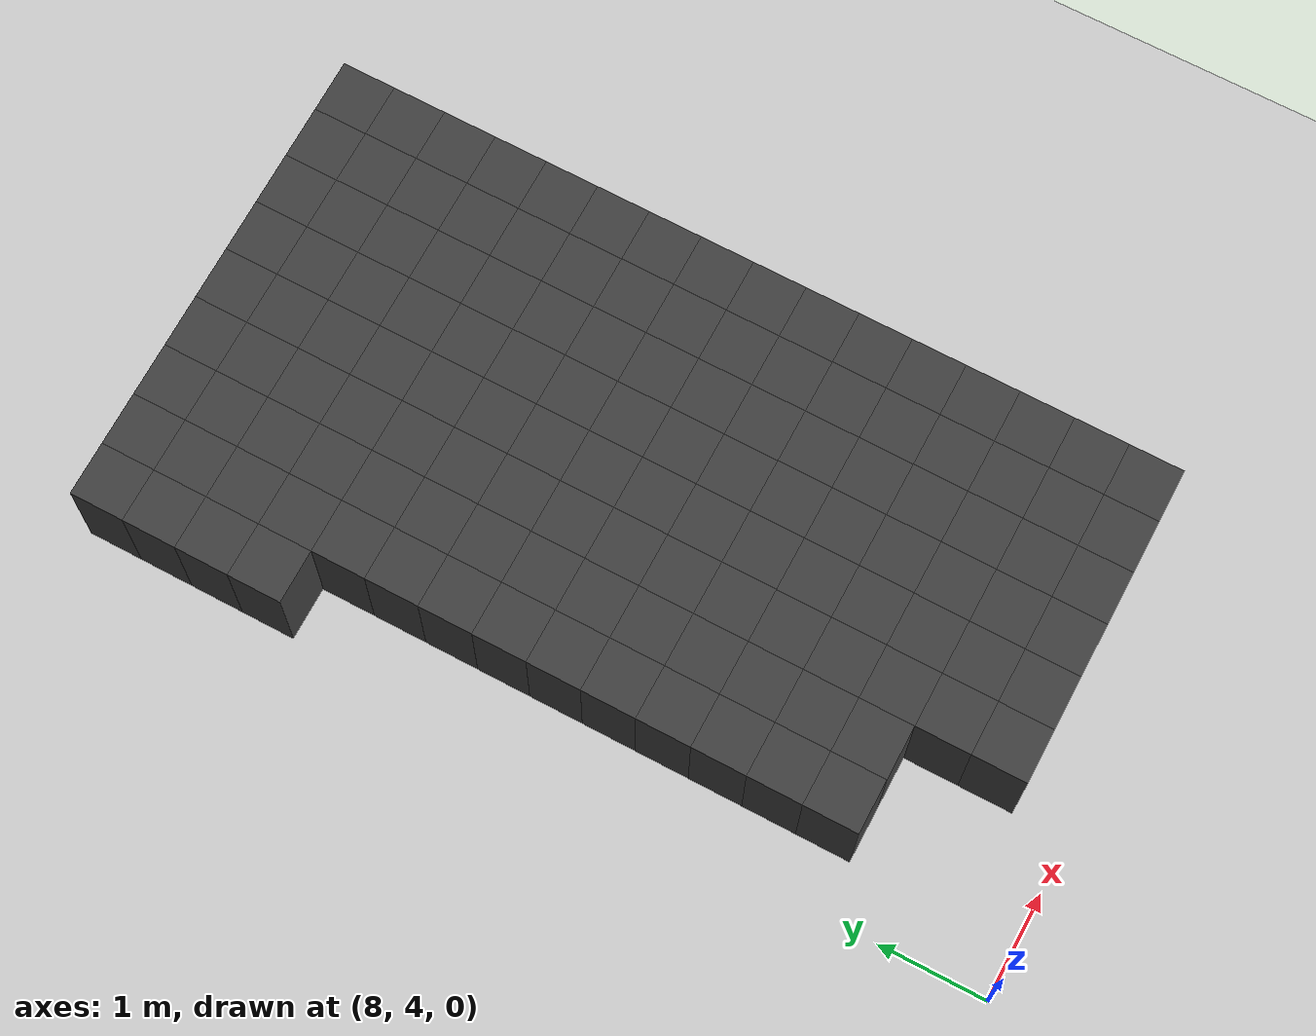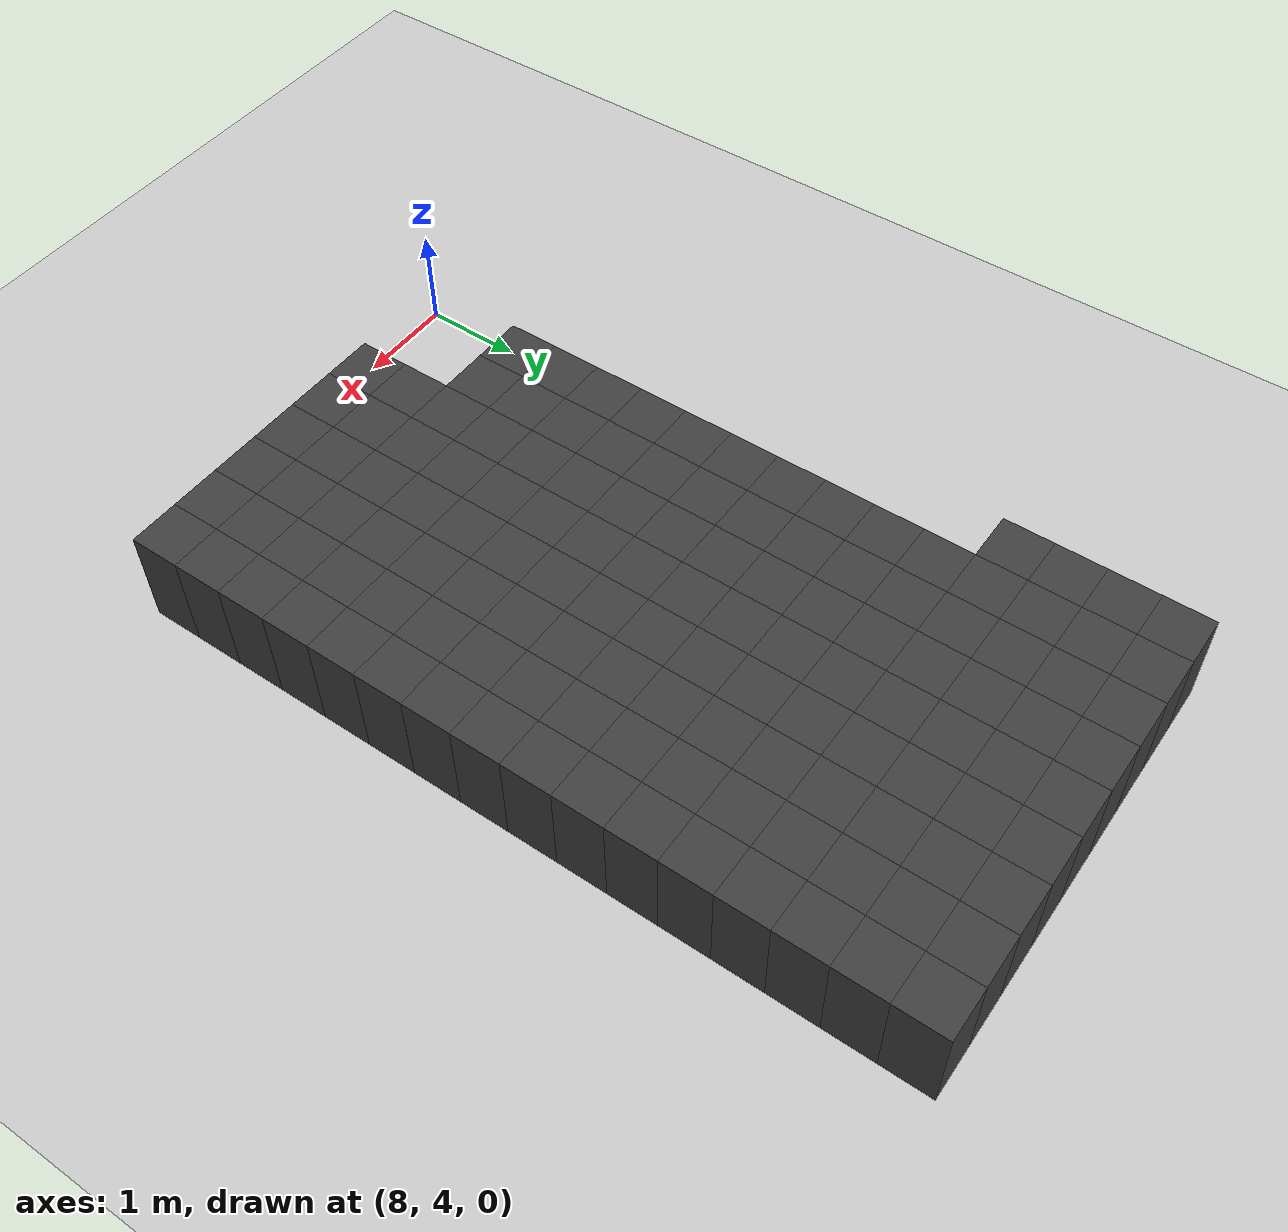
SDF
<sdf version="1.7">
 <world name="map_14980">
  <model name="ground_plane">
   <static>true</static>
   <link name="link">
    <collision name="collision">
     <geometry><plane><normal>0 0 1</normal><size>200 200</size></plane></geometry>
    </collision>
    <visual name="visual">
     <geometry><plane><normal>0 0 1</normal><size>200 200</size></plane></geometry>
     <material><ambient>0.8 0.8 0.8 1</ambient><diffuse>0.8 0.8 0.8 1</diffuse></material>
    </visual>
   </link>
  </model>
  <model name="maze_environment">
   <static>true</static>
   <link name="wall_41">
    <pose>8.250 12.250 0.500 0 0 0</pose>
    <collision name="col"><geometry><box><size>0.5 0.5 1.0</size></box></geometry></collision>
    <visual name="vis">
     <geometry><box><size>0.5 0.5 1.0</size></box></geometry>
     <material><ambient>0.15 0.15 0.15 1</ambient><diffuse>0.25 0.25 0.25 1</diffuse></material>
    </visual>
   </link>
   <link name="wall_42">
    <pose>8.750 12.250 0.500 0 0 0</pose>
    <collision name="col"><geometry><box><size>0.5 0.5 1.0</size></box></geometry></collision>
    <visual name="vis">
     <geometry><box><size>0.5 0.5 1.0</size></box></geometry>
     <material><ambient>0.15 0.15 0.15 1</ambient><diffuse>0.25 0.25 0.25 1</diffuse></material>
    </visual>
   </link>
   <link name="wall_43">
    <pose>9.250 12.250 0.500 0 0 0</pose>
    <collision name="col"><geometry><box><size>0.5 0.5 1.0</size></box></geometry></collision>
    <visual name="vis">
     <geometry><box><size>0.5 0.5 1.0</size></box></geometry>
     <material><ambient>0.15 0.15 0.15 1</ambient><diffuse>0.25 0.25 0.25 1</diffuse></material>
    </visual>
   </link>
   <link name="wall_44">
    <pose>9.750 12.250 0.500 0 0 0</pose>
    <collision name="col"><geometry><box><size>0.5 0.5 1.0</size></box></geometry></collision>
    <visual name="vis">
     <geometry><box><size>0.5 0.5 1.0</size></box></geometry>
     <material><ambient>0.15 0.15 0.15 1</ambient><diffuse>0.25 0.25 0.25 1</diffuse></material>
    </visual>
   </link>
   <link name="wall_45">
    <pose>10.250 12.250 0.500 0 0 0</pose>
    <collision name="col"><geometry><box><size>0.5 0.5 1.0</size></box></geometry></collision>
    <visual name="vis">
     <geometry><box><size>0.5 0.5 1.0</size></box></geometry>
     <material><ambient>0.15 0.15 0.15 1</ambient><diffuse>0.25 0.25 0.25 1</diffuse></material>
    </visual>
   </link>
   <link name="wall_46">
    <pose>10.750 12.250 0.500 0 0 0</pose>
    <collision name="col"><geometry><box><size>0.5 0.5 1.0</size></box></geometry></collision>
    <visual name="vis">
     <geometry><box><size>0.5 0.5 1.0</size></box></geometry>
     <material><ambient>0.15 0.15 0.15 1</ambient><diffuse>0.25 0.25 0.25 1</diffuse></material>
    </visual>
   </link>
   <link name="wall_47">
    <pose>11.250 12.250 0.500 0 0 0</pose>
    <collision name="col"><geometry><box><size>0.5 0.5 1.0</size></box></geometry></collision>
    <visual name="vis">
     <geometry><box><size>0.5 0.5 1.0</size></box></geometry>
     <material><ambient>0.15 0.15 0.15 1</ambient><diffuse>0.25 0.25 0.25 1</diffuse></material>
    </visual>
   </link>
   <link name="wall_48">
    <pose>11.750 12.250 0.500 0 0 0</pose>
    <collision name="col"><geometry><box><size>0.5 0.5 1.0</size></box></geometry></collision>
    <visual name="vis">
     <geometry><box><size>0.5 0.5 1.0</size></box></geometry>
     <material><ambient>0.15 0.15 0.15 1</ambient><diffuse>0.25 0.25 0.25 1</diffuse></material>
    </visual>
   </link>
   <link name="wall_49">
    <pose>12.250 12.250 0.500 0 0 0</pose>
    <collision name="col"><geometry><box><size>0.5 0.5 1.0</size></box></geometry></collision>
    <visual name="vis">
     <geometry><box><size>0.5 0.5 1.0</size></box></geometry>
     <material><ambient>0.15 0.15 0.15 1</ambient><diffuse>0.25 0.25 0.25 1</diffuse></material>
    </visual>
   </link>
   <link name="wall_88">
    <pose>8.250 11.750 0.500 0 0 0</pose>
    <collision name="col"><geometry><box><size>0.5 0.5 1.0</size></box></geometry></collision>
    <visual name="vis">
     <geometry><box><size>0.5 0.5 1.0</size></box></geometry>
     <material><ambient>0.15 0.15 0.15 1</ambient><diffuse>0.25 0.25 0.25 1</diffuse></material>
    </visual>
   </link>
   <link name="wall_89">
    <pose>8.750 11.750 0.500 0 0 0</pose>
    <collision name="col"><geometry><box><size>0.5 0.5 1.0</size></box></geometry></collision>
    <visual name="vis">
     <geometry><box><size>0.5 0.5 1.0</size></box></geometry>
     <material><ambient>0.15 0.15 0.15 1</ambient><diffuse>0.25 0.25 0.25 1</diffuse></material>
    </visual>
   </link>
   <link name="wall_90">
    <pose>9.250 11.750 0.500 0 0 0</pose>
    <collision name="col"><geometry><box><size>0.5 0.5 1.0</size></box></geometry></collision>
    <visual name="vis">
     <geometry><box><size>0.5 0.5 1.0</size></box></geometry>
     <material><ambient>0.15 0.15 0.15 1</ambient><diffuse>0.25 0.25 0.25 1</diffuse></material>
    </visual>
   </link>
   <link name="wall_91">
    <pose>9.750 11.750 0.500 0 0 0</pose>
    <collision name="col"><geometry><box><size>0.5 0.5 1.0</size></box></geometry></collision>
    <visual name="vis">
     <geometry><box><size>0.5 0.5 1.0</size></box></geometry>
     <material><ambient>0.15 0.15 0.15 1</ambient><diffuse>0.25 0.25 0.25 1</diffuse></material>
    </visual>
   </link>
   <link name="wall_92">
    <pose>10.250 11.750 0.500 0 0 0</pose>
    <collision name="col"><geometry><box><size>0.5 0.5 1.0</size></box></geometry></collision>
    <visual name="vis">
     <geometry><box><size>0.5 0.5 1.0</size></box></geometry>
     <material><ambient>0.15 0.15 0.15 1</ambient><diffuse>0.25 0.25 0.25 1</diffuse></material>
    </visual>
   </link>
   <link name="wall_93">
    <pose>10.750 11.750 0.500 0 0 0</pose>
    <collision name="col"><geometry><box><size>0.5 0.5 1.0</size></box></geometry></collision>
    <visual name="vis">
     <geometry><box><size>0.5 0.5 1.0</size></box></geometry>
     <material><ambient>0.15 0.15 0.15 1</ambient><diffuse>0.25 0.25 0.25 1</diffuse></material>
    </visual>
   </link>
   <link name="wall_94">
    <pose>11.250 11.750 0.500 0 0 0</pose>
    <collision name="col"><geometry><box><size>0.5 0.5 1.0</size></box></geometry></collision>
    <visual name="vis">
     <geometry><box><size>0.5 0.5 1.0</size></box></geometry>
     <material><ambient>0.15 0.15 0.15 1</ambient><diffuse>0.25 0.25 0.25 1</diffuse></material>
    </visual>
   </link>
   <link name="wall_95">
    <pose>11.750 11.750 0.500 0 0 0</pose>
    <collision name="col"><geometry><box><size>0.5 0.5 1.0</size></box></geometry></collision>
    <visual name="vis">
     <geometry><box><size>0.5 0.5 1.0</size></box></geometry>
     <material><ambient>0.15 0.15 0.15 1</ambient><diffuse>0.25 0.25 0.25 1</diffuse></material>
    </visual>
   </link>
   <link name="wall_96">
    <pose>12.250 11.750 0.500 0 0 0</pose>
    <collision name="col"><geometry><box><size>0.5 0.5 1.0</size></box></geometry></collision>
    <visual name="vis">
     <geometry><box><size>0.5 0.5 1.0</size></box></geometry>
     <material><ambient>0.15 0.15 0.15 1</ambient><diffuse>0.25 0.25 0.25 1</diffuse></material>
    </visual>
   </link>
   <link name="wall_135">
    <pose>8.250 11.250 0.500 0 0 0</pose>
    <collision name="col"><geometry><box><size>0.5 0.5 1.0</size></box></geometry></collision>
    <visual name="vis">
     <geometry><box><size>0.5 0.5 1.0</size></box></geometry>
     <material><ambient>0.15 0.15 0.15 1</ambient><diffuse>0.25 0.25 0.25 1</diffuse></material>
    </visual>
   </link>
   <link name="wall_136">
    <pose>8.750 11.250 0.500 0 0 0</pose>
    <collision name="col"><geometry><box><size>0.5 0.5 1.0</size></box></geometry></collision>
    <visual name="vis">
     <geometry><box><size>0.5 0.5 1.0</size></box></geometry>
     <material><ambient>0.15 0.15 0.15 1</ambient><diffuse>0.25 0.25 0.25 1</diffuse></material>
    </visual>
   </link>
   <link name="wall_137">
    <pose>9.250 11.250 0.500 0 0 0</pose>
    <collision name="col"><geometry><box><size>0.5 0.5 1.0</size></box></geometry></collision>
    <visual name="vis">
     <geometry><box><size>0.5 0.5 1.0</size></box></geometry>
     <material><ambient>0.15 0.15 0.15 1</ambient><diffuse>0.25 0.25 0.25 1</diffuse></material>
    </visual>
   </link>
   <link name="wall_138">
    <pose>9.750 11.250 0.500 0 0 0</pose>
    <collision name="col"><geometry><box><size>0.5 0.5 1.0</size></box></geometry></collision>
    <visual name="vis">
     <geometry><box><size>0.5 0.5 1.0</size></box></geometry>
     <material><ambient>0.15 0.15 0.15 1</ambient><diffuse>0.25 0.25 0.25 1</diffuse></material>
    </visual>
   </link>
   <link name="wall_139">
    <pose>10.250 11.250 0.500 0 0 0</pose>
    <collision name="col"><geometry><box><size>0.5 0.5 1.0</size></box></geometry></collision>
    <visual name="vis">
     <geometry><box><size>0.5 0.5 1.0</size></box></geometry>
     <material><ambient>0.15 0.15 0.15 1</ambient><diffuse>0.25 0.25 0.25 1</diffuse></material>
    </visual>
   </link>
   <link name="wall_140">
    <pose>10.750 11.250 0.500 0 0 0</pose>
    <collision name="col"><geometry><box><size>0.5 0.5 1.0</size></box></geometry></collision>
    <visual name="vis">
     <geometry><box><size>0.5 0.5 1.0</size></box></geometry>
     <material><ambient>0.15 0.15 0.15 1</ambient><diffuse>0.25 0.25 0.25 1</diffuse></material>
    </visual>
   </link>
   <link name="wall_141">
    <pose>11.250 11.250 0.500 0 0 0</pose>
    <collision name="col"><geometry><box><size>0.5 0.5 1.0</size></box></geometry></collision>
    <visual name="vis">
     <geometry><box><size>0.5 0.5 1.0</size></box></geometry>
     <material><ambient>0.15 0.15 0.15 1</ambient><diffuse>0.25 0.25 0.25 1</diffuse></material>
    </visual>
   </link>
   <link name="wall_142">
    <pose>11.750 11.250 0.500 0 0 0</pose>
    <collision name="col"><geometry><box><size>0.5 0.5 1.0</size></box></geometry></collision>
    <visual name="vis">
     <geometry><box><size>0.5 0.5 1.0</size></box></geometry>
     <material><ambient>0.15 0.15 0.15 1</ambient><diffuse>0.25 0.25 0.25 1</diffuse></material>
    </visual>
   </link>
   <link name="wall_143">
    <pose>12.250 11.250 0.500 0 0 0</pose>
    <collision name="col"><geometry><box><size>0.5 0.5 1.0</size></box></geometry></collision>
    <visual name="vis">
     <geometry><box><size>0.5 0.5 1.0</size></box></geometry>
     <material><ambient>0.15 0.15 0.15 1</ambient><diffuse>0.25 0.25 0.25 1</diffuse></material>
    </visual>
   </link>
   <link name="wall_176">
    <pose>8.250 10.750 0.500 0 0 0</pose>
    <collision name="col"><geometry><box><size>0.5 0.5 1.0</size></box></geometry></collision>
    <visual name="vis">
     <geometry><box><size>0.5 0.5 1.0</size></box></geometry>
     <material><ambient>0.15 0.15 0.15 1</ambient><diffuse>0.25 0.25 0.25 1</diffuse></material>
    </visual>
   </link>
   <link name="wall_177">
    <pose>8.750 10.750 0.500 0 0 0</pose>
    <collision name="col"><geometry><box><size>0.5 0.5 1.0</size></box></geometry></collision>
    <visual name="vis">
     <geometry><box><size>0.5 0.5 1.0</size></box></geometry>
     <material><ambient>0.15 0.15 0.15 1</ambient><diffuse>0.25 0.25 0.25 1</diffuse></material>
    </visual>
   </link>
   <link name="wall_178">
    <pose>9.250 10.750 0.500 0 0 0</pose>
    <collision name="col"><geometry><box><size>0.5 0.5 1.0</size></box></geometry></collision>
    <visual name="vis">
     <geometry><box><size>0.5 0.5 1.0</size></box></geometry>
     <material><ambient>0.15 0.15 0.15 1</ambient><diffuse>0.25 0.25 0.25 1</diffuse></material>
    </visual>
   </link>
   <link name="wall_179">
    <pose>9.750 10.750 0.500 0 0 0</pose>
    <collision name="col"><geometry><box><size>0.5 0.5 1.0</size></box></geometry></collision>
    <visual name="vis">
     <geometry><box><size>0.5 0.5 1.0</size></box></geometry>
     <material><ambient>0.15 0.15 0.15 1</ambient><diffuse>0.25 0.25 0.25 1</diffuse></material>
    </visual>
   </link>
   <link name="wall_180">
    <pose>10.250 10.750 0.500 0 0 0</pose>
    <collision name="col"><geometry><box><size>0.5 0.5 1.0</size></box></geometry></collision>
    <visual name="vis">
     <geometry><box><size>0.5 0.5 1.0</size></box></geometry>
     <material><ambient>0.15 0.15 0.15 1</ambient><diffuse>0.25 0.25 0.25 1</diffuse></material>
    </visual>
   </link>
   <link name="wall_181">
    <pose>10.750 10.750 0.500 0 0 0</pose>
    <collision name="col"><geometry><box><size>0.5 0.5 1.0</size></box></geometry></collision>
    <visual name="vis">
     <geometry><box><size>0.5 0.5 1.0</size></box></geometry>
     <material><ambient>0.15 0.15 0.15 1</ambient><diffuse>0.25 0.25 0.25 1</diffuse></material>
    </visual>
   </link>
   <link name="wall_182">
    <pose>11.250 10.750 0.500 0 0 0</pose>
    <collision name="col"><geometry><box><size>0.5 0.5 1.0</size></box></geometry></collision>
    <visual name="vis">
     <geometry><box><size>0.5 0.5 1.0</size></box></geometry>
     <material><ambient>0.15 0.15 0.15 1</ambient><diffuse>0.25 0.25 0.25 1</diffuse></material>
    </visual>
   </link>
   <link name="wall_183">
    <pose>11.750 10.750 0.500 0 0 0</pose>
    <collision name="col"><geometry><box><size>0.5 0.5 1.0</size></box></geometry></collision>
    <visual name="vis">
     <geometry><box><size>0.5 0.5 1.0</size></box></geometry>
     <material><ambient>0.15 0.15 0.15 1</ambient><diffuse>0.25 0.25 0.25 1</diffuse></material>
    </visual>
   </link>
   <link name="wall_184">
    <pose>12.250 10.750 0.500 0 0 0</pose>
    <collision name="col"><geometry><box><size>0.5 0.5 1.0</size></box></geometry></collision>
    <visual name="vis">
     <geometry><box><size>0.5 0.5 1.0</size></box></geometry>
     <material><ambient>0.15 0.15 0.15 1</ambient><diffuse>0.25 0.25 0.25 1</diffuse></material>
    </visual>
   </link>
   <link name="wall_220">
    <pose>8.750 10.250 0.500 0 0 0</pose>
    <collision name="col"><geometry><box><size>0.5 0.5 1.0</size></box></geometry></collision>
    <visual name="vis">
     <geometry><box><size>0.5 0.5 1.0</size></box></geometry>
     <material><ambient>0.15 0.15 0.15 1</ambient><diffuse>0.25 0.25 0.25 1</diffuse></material>
    </visual>
   </link>
   <link name="wall_221">
    <pose>9.250 10.250 0.500 0 0 0</pose>
    <collision name="col"><geometry><box><size>0.5 0.5 1.0</size></box></geometry></collision>
    <visual name="vis">
     <geometry><box><size>0.5 0.5 1.0</size></box></geometry>
     <material><ambient>0.15 0.15 0.15 1</ambient><diffuse>0.25 0.25 0.25 1</diffuse></material>
    </visual>
   </link>
   <link name="wall_222">
    <pose>9.750 10.250 0.500 0 0 0</pose>
    <collision name="col"><geometry><box><size>0.5 0.5 1.0</size></box></geometry></collision>
    <visual name="vis">
     <geometry><box><size>0.5 0.5 1.0</size></box></geometry>
     <material><ambient>0.15 0.15 0.15 1</ambient><diffuse>0.25 0.25 0.25 1</diffuse></material>
    </visual>
   </link>
   <link name="wall_223">
    <pose>10.250 10.250 0.500 0 0 0</pose>
    <collision name="col"><geometry><box><size>0.5 0.5 1.0</size></box></geometry></collision>
    <visual name="vis">
     <geometry><box><size>0.5 0.5 1.0</size></box></geometry>
     <material><ambient>0.15 0.15 0.15 1</ambient><diffuse>0.25 0.25 0.25 1</diffuse></material>
    </visual>
   </link>
   <link name="wall_224">
    <pose>10.750 10.250 0.500 0 0 0</pose>
    <collision name="col"><geometry><box><size>0.5 0.5 1.0</size></box></geometry></collision>
    <visual name="vis">
     <geometry><box><size>0.5 0.5 1.0</size></box></geometry>
     <material><ambient>0.15 0.15 0.15 1</ambient><diffuse>0.25 0.25 0.25 1</diffuse></material>
    </visual>
   </link>
   <link name="wall_225">
    <pose>11.250 10.250 0.500 0 0 0</pose>
    <collision name="col"><geometry><box><size>0.5 0.5 1.0</size></box></geometry></collision>
    <visual name="vis">
     <geometry><box><size>0.5 0.5 1.0</size></box></geometry>
     <material><ambient>0.15 0.15 0.15 1</ambient><diffuse>0.25 0.25 0.25 1</diffuse></material>
    </visual>
   </link>
   <link name="wall_226">
    <pose>11.750 10.250 0.500 0 0 0</pose>
    <collision name="col"><geometry><box><size>0.5 0.5 1.0</size></box></geometry></collision>
    <visual name="vis">
     <geometry><box><size>0.5 0.5 1.0</size></box></geometry>
     <material><ambient>0.15 0.15 0.15 1</ambient><diffuse>0.25 0.25 0.25 1</diffuse></material>
    </visual>
   </link>
   <link name="wall_227">
    <pose>12.250 10.250 0.500 0 0 0</pose>
    <collision name="col"><geometry><box><size>0.5 0.5 1.0</size></box></geometry></collision>
    <visual name="vis">
     <geometry><box><size>0.5 0.5 1.0</size></box></geometry>
     <material><ambient>0.15 0.15 0.15 1</ambient><diffuse>0.25 0.25 0.25 1</diffuse></material>
    </visual>
   </link>
   <link name="wall_258">
    <pose>8.750 9.750 0.500 0 0 0</pose>
    <collision name="col"><geometry><box><size>0.5 0.5 1.0</size></box></geometry></collision>
    <visual name="vis">
     <geometry><box><size>0.5 0.5 1.0</size></box></geometry>
     <material><ambient>0.15 0.15 0.15 1</ambient><diffuse>0.25 0.25 0.25 1</diffuse></material>
    </visual>
   </link>
   <link name="wall_259">
    <pose>9.250 9.750 0.500 0 0 0</pose>
    <collision name="col"><geometry><box><size>0.5 0.5 1.0</size></box></geometry></collision>
    <visual name="vis">
     <geometry><box><size>0.5 0.5 1.0</size></box></geometry>
     <material><ambient>0.15 0.15 0.15 1</ambient><diffuse>0.25 0.25 0.25 1</diffuse></material>
    </visual>
   </link>
   <link name="wall_260">
    <pose>9.750 9.750 0.500 0 0 0</pose>
    <collision name="col"><geometry><box><size>0.5 0.5 1.0</size></box></geometry></collision>
    <visual name="vis">
     <geometry><box><size>0.5 0.5 1.0</size></box></geometry>
     <material><ambient>0.15 0.15 0.15 1</ambient><diffuse>0.25 0.25 0.25 1</diffuse></material>
    </visual>
   </link>
   <link name="wall_261">
    <pose>10.250 9.750 0.500 0 0 0</pose>
    <collision name="col"><geometry><box><size>0.5 0.5 1.0</size></box></geometry></collision>
    <visual name="vis">
     <geometry><box><size>0.5 0.5 1.0</size></box></geometry>
     <material><ambient>0.15 0.15 0.15 1</ambient><diffuse>0.25 0.25 0.25 1</diffuse></material>
    </visual>
   </link>
   <link name="wall_262">
    <pose>10.750 9.750 0.500 0 0 0</pose>
    <collision name="col"><geometry><box><size>0.5 0.5 1.0</size></box></geometry></collision>
    <visual name="vis">
     <geometry><box><size>0.5 0.5 1.0</size></box></geometry>
     <material><ambient>0.15 0.15 0.15 1</ambient><diffuse>0.25 0.25 0.25 1</diffuse></material>
    </visual>
   </link>
   <link name="wall_263">
    <pose>11.250 9.750 0.500 0 0 0</pose>
    <collision name="col"><geometry><box><size>0.5 0.5 1.0</size></box></geometry></collision>
    <visual name="vis">
     <geometry><box><size>0.5 0.5 1.0</size></box></geometry>
     <material><ambient>0.15 0.15 0.15 1</ambient><diffuse>0.25 0.25 0.25 1</diffuse></material>
    </visual>
   </link>
   <link name="wall_264">
    <pose>11.750 9.750 0.500 0 0 0</pose>
    <collision name="col"><geometry><box><size>0.5 0.5 1.0</size></box></geometry></collision>
    <visual name="vis">
     <geometry><box><size>0.5 0.5 1.0</size></box></geometry>
     <material><ambient>0.15 0.15 0.15 1</ambient><diffuse>0.25 0.25 0.25 1</diffuse></material>
    </visual>
   </link>
   <link name="wall_265">
    <pose>12.250 9.750 0.500 0 0 0</pose>
    <collision name="col"><geometry><box><size>0.5 0.5 1.0</size></box></geometry></collision>
    <visual name="vis">
     <geometry><box><size>0.5 0.5 1.0</size></box></geometry>
     <material><ambient>0.15 0.15 0.15 1</ambient><diffuse>0.25 0.25 0.25 1</diffuse></material>
    </visual>
   </link>
   <link name="wall_296">
    <pose>8.750 9.250 0.500 0 0 0</pose>
    <collision name="col"><geometry><box><size>0.5 0.5 1.0</size></box></geometry></collision>
    <visual name="vis">
     <geometry><box><size>0.5 0.5 1.0</size></box></geometry>
     <material><ambient>0.15 0.15 0.15 1</ambient><diffuse>0.25 0.25 0.25 1</diffuse></material>
    </visual>
   </link>
   <link name="wall_297">
    <pose>9.250 9.250 0.500 0 0 0</pose>
    <collision name="col"><geometry><box><size>0.5 0.5 1.0</size></box></geometry></collision>
    <visual name="vis">
     <geometry><box><size>0.5 0.5 1.0</size></box></geometry>
     <material><ambient>0.15 0.15 0.15 1</ambient><diffuse>0.25 0.25 0.25 1</diffuse></material>
    </visual>
   </link>
   <link name="wall_298">
    <pose>9.750 9.250 0.500 0 0 0</pose>
    <collision name="col"><geometry><box><size>0.5 0.5 1.0</size></box></geometry></collision>
    <visual name="vis">
     <geometry><box><size>0.5 0.5 1.0</size></box></geometry>
     <material><ambient>0.15 0.15 0.15 1</ambient><diffuse>0.25 0.25 0.25 1</diffuse></material>
    </visual>
   </link>
   <link name="wall_299">
    <pose>10.250 9.250 0.500 0 0 0</pose>
    <collision name="col"><geometry><box><size>0.5 0.5 1.0</size></box></geometry></collision>
    <visual name="vis">
     <geometry><box><size>0.5 0.5 1.0</size></box></geometry>
     <material><ambient>0.15 0.15 0.15 1</ambient><diffuse>0.25 0.25 0.25 1</diffuse></material>
    </visual>
   </link>
   <link name="wall_300">
    <pose>10.750 9.250 0.500 0 0 0</pose>
    <collision name="col"><geometry><box><size>0.5 0.5 1.0</size></box></geometry></collision>
    <visual name="vis">
     <geometry><box><size>0.5 0.5 1.0</size></box></geometry>
     <material><ambient>0.15 0.15 0.15 1</ambient><diffuse>0.25 0.25 0.25 1</diffuse></material>
    </visual>
   </link>
   <link name="wall_301">
    <pose>11.250 9.250 0.500 0 0 0</pose>
    <collision name="col"><geometry><box><size>0.5 0.5 1.0</size></box></geometry></collision>
    <visual name="vis">
     <geometry><box><size>0.5 0.5 1.0</size></box></geometry>
     <material><ambient>0.15 0.15 0.15 1</ambient><diffuse>0.25 0.25 0.25 1</diffuse></material>
    </visual>
   </link>
   <link name="wall_302">
    <pose>11.750 9.250 0.500 0 0 0</pose>
    <collision name="col"><geometry><box><size>0.5 0.5 1.0</size></box></geometry></collision>
    <visual name="vis">
     <geometry><box><size>0.5 0.5 1.0</size></box></geometry>
     <material><ambient>0.15 0.15 0.15 1</ambient><diffuse>0.25 0.25 0.25 1</diffuse></material>
    </visual>
   </link>
   <link name="wall_303">
    <pose>12.250 9.250 0.500 0 0 0</pose>
    <collision name="col"><geometry><box><size>0.5 0.5 1.0</size></box></geometry></collision>
    <visual name="vis">
     <geometry><box><size>0.5 0.5 1.0</size></box></geometry>
     <material><ambient>0.15 0.15 0.15 1</ambient><diffuse>0.25 0.25 0.25 1</diffuse></material>
    </visual>
   </link>
   <link name="wall_331">
    <pose>8.750 8.750 0.500 0 0 0</pose>
    <collision name="col"><geometry><box><size>0.5 0.5 1.0</size></box></geometry></collision>
    <visual name="vis">
     <geometry><box><size>0.5 0.5 1.0</size></box></geometry>
     <material><ambient>0.15 0.15 0.15 1</ambient><diffuse>0.25 0.25 0.25 1</diffuse></material>
    </visual>
   </link>
   <link name="wall_332">
    <pose>9.250 8.750 0.500 0 0 0</pose>
    <collision name="col"><geometry><box><size>0.5 0.5 1.0</size></box></geometry></collision>
    <visual name="vis">
     <geometry><box><size>0.5 0.5 1.0</size></box></geometry>
     <material><ambient>0.15 0.15 0.15 1</ambient><diffuse>0.25 0.25 0.25 1</diffuse></material>
    </visual>
   </link>
   <link name="wall_333">
    <pose>9.750 8.750 0.500 0 0 0</pose>
    <collision name="col"><geometry><box><size>0.5 0.5 1.0</size></box></geometry></collision>
    <visual name="vis">
     <geometry><box><size>0.5 0.5 1.0</size></box></geometry>
     <material><ambient>0.15 0.15 0.15 1</ambient><diffuse>0.25 0.25 0.25 1</diffuse></material>
    </visual>
   </link>
   <link name="wall_334">
    <pose>10.250 8.750 0.500 0 0 0</pose>
    <collision name="col"><geometry><box><size>0.5 0.5 1.0</size></box></geometry></collision>
    <visual name="vis">
     <geometry><box><size>0.5 0.5 1.0</size></box></geometry>
     <material><ambient>0.15 0.15 0.15 1</ambient><diffuse>0.25 0.25 0.25 1</diffuse></material>
    </visual>
   </link>
   <link name="wall_335">
    <pose>10.750 8.750 0.500 0 0 0</pose>
    <collision name="col"><geometry><box><size>0.5 0.5 1.0</size></box></geometry></collision>
    <visual name="vis">
     <geometry><box><size>0.5 0.5 1.0</size></box></geometry>
     <material><ambient>0.15 0.15 0.15 1</ambient><diffuse>0.25 0.25 0.25 1</diffuse></material>
    </visual>
   </link>
   <link name="wall_336">
    <pose>11.250 8.750 0.500 0 0 0</pose>
    <collision name="col"><geometry><box><size>0.5 0.5 1.0</size></box></geometry></collision>
    <visual name="vis">
     <geometry><box><size>0.5 0.5 1.0</size></box></geometry>
     <material><ambient>0.15 0.15 0.15 1</ambient><diffuse>0.25 0.25 0.25 1</diffuse></material>
    </visual>
   </link>
   <link name="wall_337">
    <pose>11.750 8.750 0.500 0 0 0</pose>
    <collision name="col"><geometry><box><size>0.5 0.5 1.0</size></box></geometry></collision>
    <visual name="vis">
     <geometry><box><size>0.5 0.5 1.0</size></box></geometry>
     <material><ambient>0.15 0.15 0.15 1</ambient><diffuse>0.25 0.25 0.25 1</diffuse></material>
    </visual>
   </link>
   <link name="wall_338">
    <pose>12.250 8.750 0.500 0 0 0</pose>
    <collision name="col"><geometry><box><size>0.5 0.5 1.0</size></box></geometry></collision>
    <visual name="vis">
     <geometry><box><size>0.5 0.5 1.0</size></box></geometry>
     <material><ambient>0.15 0.15 0.15 1</ambient><diffuse>0.25 0.25 0.25 1</diffuse></material>
    </visual>
   </link>
   <link name="wall_360">
    <pose>8.750 8.250 0.500 0 0 0</pose>
    <collision name="col"><geometry><box><size>0.5 0.5 1.0</size></box></geometry></collision>
    <visual name="vis">
     <geometry><box><size>0.5 0.5 1.0</size></box></geometry>
     <material><ambient>0.15 0.15 0.15 1</ambient><diffuse>0.25 0.25 0.25 1</diffuse></material>
    </visual>
   </link>
   <link name="wall_361">
    <pose>9.250 8.250 0.500 0 0 0</pose>
    <collision name="col"><geometry><box><size>0.5 0.5 1.0</size></box></geometry></collision>
    <visual name="vis">
     <geometry><box><size>0.5 0.5 1.0</size></box></geometry>
     <material><ambient>0.15 0.15 0.15 1</ambient><diffuse>0.25 0.25 0.25 1</diffuse></material>
    </visual>
   </link>
   <link name="wall_362">
    <pose>9.750 8.250 0.500 0 0 0</pose>
    <collision name="col"><geometry><box><size>0.5 0.5 1.0</size></box></geometry></collision>
    <visual name="vis">
     <geometry><box><size>0.5 0.5 1.0</size></box></geometry>
     <material><ambient>0.15 0.15 0.15 1</ambient><diffuse>0.25 0.25 0.25 1</diffuse></material>
    </visual>
   </link>
   <link name="wall_363">
    <pose>10.250 8.250 0.500 0 0 0</pose>
    <collision name="col"><geometry><box><size>0.5 0.5 1.0</size></box></geometry></collision>
    <visual name="vis">
     <geometry><box><size>0.5 0.5 1.0</size></box></geometry>
     <material><ambient>0.15 0.15 0.15 1</ambient><diffuse>0.25 0.25 0.25 1</diffuse></material>
    </visual>
   </link>
   <link name="wall_364">
    <pose>10.750 8.250 0.500 0 0 0</pose>
    <collision name="col"><geometry><box><size>0.5 0.5 1.0</size></box></geometry></collision>
    <visual name="vis">
     <geometry><box><size>0.5 0.5 1.0</size></box></geometry>
     <material><ambient>0.15 0.15 0.15 1</ambient><diffuse>0.25 0.25 0.25 1</diffuse></material>
    </visual>
   </link>
   <link name="wall_365">
    <pose>11.250 8.250 0.500 0 0 0</pose>
    <collision name="col"><geometry><box><size>0.5 0.5 1.0</size></box></geometry></collision>
    <visual name="vis">
     <geometry><box><size>0.5 0.5 1.0</size></box></geometry>
     <material><ambient>0.15 0.15 0.15 1</ambient><diffuse>0.25 0.25 0.25 1</diffuse></material>
    </visual>
   </link>
   <link name="wall_366">
    <pose>11.750 8.250 0.500 0 0 0</pose>
    <collision name="col"><geometry><box><size>0.5 0.5 1.0</size></box></geometry></collision>
    <visual name="vis">
     <geometry><box><size>0.5 0.5 1.0</size></box></geometry>
     <material><ambient>0.15 0.15 0.15 1</ambient><diffuse>0.25 0.25 0.25 1</diffuse></material>
    </visual>
   </link>
   <link name="wall_367">
    <pose>12.250 8.250 0.500 0 0 0</pose>
    <collision name="col"><geometry><box><size>0.5 0.5 1.0</size></box></geometry></collision>
    <visual name="vis">
     <geometry><box><size>0.5 0.5 1.0</size></box></geometry>
     <material><ambient>0.15 0.15 0.15 1</ambient><diffuse>0.25 0.25 0.25 1</diffuse></material>
    </visual>
   </link>
   <link name="wall_389">
    <pose>8.750 7.750 0.500 0 0 0</pose>
    <collision name="col"><geometry><box><size>0.5 0.5 1.0</size></box></geometry></collision>
    <visual name="vis">
     <geometry><box><size>0.5 0.5 1.0</size></box></geometry>
     <material><ambient>0.15 0.15 0.15 1</ambient><diffuse>0.25 0.25 0.25 1</diffuse></material>
    </visual>
   </link>
   <link name="wall_390">
    <pose>9.250 7.750 0.500 0 0 0</pose>
    <collision name="col"><geometry><box><size>0.5 0.5 1.0</size></box></geometry></collision>
    <visual name="vis">
     <geometry><box><size>0.5 0.5 1.0</size></box></geometry>
     <material><ambient>0.15 0.15 0.15 1</ambient><diffuse>0.25 0.25 0.25 1</diffuse></material>
    </visual>
   </link>
   <link name="wall_391">
    <pose>9.750 7.750 0.500 0 0 0</pose>
    <collision name="col"><geometry><box><size>0.5 0.5 1.0</size></box></geometry></collision>
    <visual name="vis">
     <geometry><box><size>0.5 0.5 1.0</size></box></geometry>
     <material><ambient>0.15 0.15 0.15 1</ambient><diffuse>0.25 0.25 0.25 1</diffuse></material>
    </visual>
   </link>
   <link name="wall_392">
    <pose>10.250 7.750 0.500 0 0 0</pose>
    <collision name="col"><geometry><box><size>0.5 0.5 1.0</size></box></geometry></collision>
    <visual name="vis">
     <geometry><box><size>0.5 0.5 1.0</size></box></geometry>
     <material><ambient>0.15 0.15 0.15 1</ambient><diffuse>0.25 0.25 0.25 1</diffuse></material>
    </visual>
   </link>
   <link name="wall_393">
    <pose>10.750 7.750 0.500 0 0 0</pose>
    <collision name="col"><geometry><box><size>0.5 0.5 1.0</size></box></geometry></collision>
    <visual name="vis">
     <geometry><box><size>0.5 0.5 1.0</size></box></geometry>
     <material><ambient>0.15 0.15 0.15 1</ambient><diffuse>0.25 0.25 0.25 1</diffuse></material>
    </visual>
   </link>
   <link name="wall_394">
    <pose>11.250 7.750 0.500 0 0 0</pose>
    <collision name="col"><geometry><box><size>0.5 0.5 1.0</size></box></geometry></collision>
    <visual name="vis">
     <geometry><box><size>0.5 0.5 1.0</size></box></geometry>
     <material><ambient>0.15 0.15 0.15 1</ambient><diffuse>0.25 0.25 0.25 1</diffuse></material>
    </visual>
   </link>
   <link name="wall_395">
    <pose>11.750 7.750 0.500 0 0 0</pose>
    <collision name="col"><geometry><box><size>0.5 0.5 1.0</size></box></geometry></collision>
    <visual name="vis">
     <geometry><box><size>0.5 0.5 1.0</size></box></geometry>
     <material><ambient>0.15 0.15 0.15 1</ambient><diffuse>0.25 0.25 0.25 1</diffuse></material>
    </visual>
   </link>
   <link name="wall_396">
    <pose>12.250 7.750 0.500 0 0 0</pose>
    <collision name="col"><geometry><box><size>0.5 0.5 1.0</size></box></geometry></collision>
    <visual name="vis">
     <geometry><box><size>0.5 0.5 1.0</size></box></geometry>
     <material><ambient>0.15 0.15 0.15 1</ambient><diffuse>0.25 0.25 0.25 1</diffuse></material>
    </visual>
   </link>
   <link name="wall_412">
    <pose>8.750 7.250 0.500 0 0 0</pose>
    <collision name="col"><geometry><box><size>0.5 0.5 1.0</size></box></geometry></collision>
    <visual name="vis">
     <geometry><box><size>0.5 0.5 1.0</size></box></geometry>
     <material><ambient>0.15 0.15 0.15 1</ambient><diffuse>0.25 0.25 0.25 1</diffuse></material>
    </visual>
   </link>
   <link name="wall_413">
    <pose>9.250 7.250 0.500 0 0 0</pose>
    <collision name="col"><geometry><box><size>0.5 0.5 1.0</size></box></geometry></collision>
    <visual name="vis">
     <geometry><box><size>0.5 0.5 1.0</size></box></geometry>
     <material><ambient>0.15 0.15 0.15 1</ambient><diffuse>0.25 0.25 0.25 1</diffuse></material>
    </visual>
   </link>
   <link name="wall_414">
    <pose>9.750 7.250 0.500 0 0 0</pose>
    <collision name="col"><geometry><box><size>0.5 0.5 1.0</size></box></geometry></collision>
    <visual name="vis">
     <geometry><box><size>0.5 0.5 1.0</size></box></geometry>
     <material><ambient>0.15 0.15 0.15 1</ambient><diffuse>0.25 0.25 0.25 1</diffuse></material>
    </visual>
   </link>
   <link name="wall_415">
    <pose>10.250 7.250 0.500 0 0 0</pose>
    <collision name="col"><geometry><box><size>0.5 0.5 1.0</size></box></geometry></collision>
    <visual name="vis">
     <geometry><box><size>0.5 0.5 1.0</size></box></geometry>
     <material><ambient>0.15 0.15 0.15 1</ambient><diffuse>0.25 0.25 0.25 1</diffuse></material>
    </visual>
   </link>
   <link name="wall_416">
    <pose>10.750 7.250 0.500 0 0 0</pose>
    <collision name="col"><geometry><box><size>0.5 0.5 1.0</size></box></geometry></collision>
    <visual name="vis">
     <geometry><box><size>0.5 0.5 1.0</size></box></geometry>
     <material><ambient>0.15 0.15 0.15 1</ambient><diffuse>0.25 0.25 0.25 1</diffuse></material>
    </visual>
   </link>
   <link name="wall_417">
    <pose>11.250 7.250 0.500 0 0 0</pose>
    <collision name="col"><geometry><box><size>0.5 0.5 1.0</size></box></geometry></collision>
    <visual name="vis">
     <geometry><box><size>0.5 0.5 1.0</size></box></geometry>
     <material><ambient>0.15 0.15 0.15 1</ambient><diffuse>0.25 0.25 0.25 1</diffuse></material>
    </visual>
   </link>
   <link name="wall_418">
    <pose>11.750 7.250 0.500 0 0 0</pose>
    <collision name="col"><geometry><box><size>0.5 0.5 1.0</size></box></geometry></collision>
    <visual name="vis">
     <geometry><box><size>0.5 0.5 1.0</size></box></geometry>
     <material><ambient>0.15 0.15 0.15 1</ambient><diffuse>0.25 0.25 0.25 1</diffuse></material>
    </visual>
   </link>
   <link name="wall_419">
    <pose>12.250 7.250 0.500 0 0 0</pose>
    <collision name="col"><geometry><box><size>0.5 0.5 1.0</size></box></geometry></collision>
    <visual name="vis">
     <geometry><box><size>0.5 0.5 1.0</size></box></geometry>
     <material><ambient>0.15 0.15 0.15 1</ambient><diffuse>0.25 0.25 0.25 1</diffuse></material>
    </visual>
   </link>
   <link name="wall_452">
    <pose>8.750 6.750 0.500 0 0 0</pose>
    <collision name="col"><geometry><box><size>0.5 0.5 1.0</size></box></geometry></collision>
    <visual name="vis">
     <geometry><box><size>0.5 0.5 1.0</size></box></geometry>
     <material><ambient>0.15 0.15 0.15 1</ambient><diffuse>0.25 0.25 0.25 1</diffuse></material>
    </visual>
   </link>
   <link name="wall_453">
    <pose>9.250 6.750 0.500 0 0 0</pose>
    <collision name="col"><geometry><box><size>0.5 0.5 1.0</size></box></geometry></collision>
    <visual name="vis">
     <geometry><box><size>0.5 0.5 1.0</size></box></geometry>
     <material><ambient>0.15 0.15 0.15 1</ambient><diffuse>0.25 0.25 0.25 1</diffuse></material>
    </visual>
   </link>
   <link name="wall_454">
    <pose>9.750 6.750 0.500 0 0 0</pose>
    <collision name="col"><geometry><box><size>0.5 0.5 1.0</size></box></geometry></collision>
    <visual name="vis">
     <geometry><box><size>0.5 0.5 1.0</size></box></geometry>
     <material><ambient>0.15 0.15 0.15 1</ambient><diffuse>0.25 0.25 0.25 1</diffuse></material>
    </visual>
   </link>
   <link name="wall_455">
    <pose>10.250 6.750 0.500 0 0 0</pose>
    <collision name="col"><geometry><box><size>0.5 0.5 1.0</size></box></geometry></collision>
    <visual name="vis">
     <geometry><box><size>0.5 0.5 1.0</size></box></geometry>
     <material><ambient>0.15 0.15 0.15 1</ambient><diffuse>0.25 0.25 0.25 1</diffuse></material>
    </visual>
   </link>
   <link name="wall_456">
    <pose>10.750 6.750 0.500 0 0 0</pose>
    <collision name="col"><geometry><box><size>0.5 0.5 1.0</size></box></geometry></collision>
    <visual name="vis">
     <geometry><box><size>0.5 0.5 1.0</size></box></geometry>
     <material><ambient>0.15 0.15 0.15 1</ambient><diffuse>0.25 0.25 0.25 1</diffuse></material>
    </visual>
   </link>
   <link name="wall_457">
    <pose>11.250 6.750 0.500 0 0 0</pose>
    <collision name="col"><geometry><box><size>0.5 0.5 1.0</size></box></geometry></collision>
    <visual name="vis">
     <geometry><box><size>0.5 0.5 1.0</size></box></geometry>
     <material><ambient>0.15 0.15 0.15 1</ambient><diffuse>0.25 0.25 0.25 1</diffuse></material>
    </visual>
   </link>
   <link name="wall_458">
    <pose>11.750 6.750 0.500 0 0 0</pose>
    <collision name="col"><geometry><box><size>0.5 0.5 1.0</size></box></geometry></collision>
    <visual name="vis">
     <geometry><box><size>0.5 0.5 1.0</size></box></geometry>
     <material><ambient>0.15 0.15 0.15 1</ambient><diffuse>0.25 0.25 0.25 1</diffuse></material>
    </visual>
   </link>
   <link name="wall_459">
    <pose>12.250 6.750 0.500 0 0 0</pose>
    <collision name="col"><geometry><box><size>0.5 0.5 1.0</size></box></geometry></collision>
    <visual name="vis">
     <geometry><box><size>0.5 0.5 1.0</size></box></geometry>
     <material><ambient>0.15 0.15 0.15 1</ambient><diffuse>0.25 0.25 0.25 1</diffuse></material>
    </visual>
   </link>
   <link name="wall_489">
    <pose>8.750 6.250 0.500 0 0 0</pose>
    <collision name="col"><geometry><box><size>0.5 0.5 1.0</size></box></geometry></collision>
    <visual name="vis">
     <geometry><box><size>0.5 0.5 1.0</size></box></geometry>
     <material><ambient>0.15 0.15 0.15 1</ambient><diffuse>0.25 0.25 0.25 1</diffuse></material>
    </visual>
   </link>
   <link name="wall_490">
    <pose>9.250 6.250 0.500 0 0 0</pose>
    <collision name="col"><geometry><box><size>0.5 0.5 1.0</size></box></geometry></collision>
    <visual name="vis">
     <geometry><box><size>0.5 0.5 1.0</size></box></geometry>
     <material><ambient>0.15 0.15 0.15 1</ambient><diffuse>0.25 0.25 0.25 1</diffuse></material>
    </visual>
   </link>
   <link name="wall_491">
    <pose>9.750 6.250 0.500 0 0 0</pose>
    <collision name="col"><geometry><box><size>0.5 0.5 1.0</size></box></geometry></collision>
    <visual name="vis">
     <geometry><box><size>0.5 0.5 1.0</size></box></geometry>
     <material><ambient>0.15 0.15 0.15 1</ambient><diffuse>0.25 0.25 0.25 1</diffuse></material>
    </visual>
   </link>
   <link name="wall_492">
    <pose>10.250 6.250 0.500 0 0 0</pose>
    <collision name="col"><geometry><box><size>0.5 0.5 1.0</size></box></geometry></collision>
    <visual name="vis">
     <geometry><box><size>0.5 0.5 1.0</size></box></geometry>
     <material><ambient>0.15 0.15 0.15 1</ambient><diffuse>0.25 0.25 0.25 1</diffuse></material>
    </visual>
   </link>
   <link name="wall_493">
    <pose>10.750 6.250 0.500 0 0 0</pose>
    <collision name="col"><geometry><box><size>0.5 0.5 1.0</size></box></geometry></collision>
    <visual name="vis">
     <geometry><box><size>0.5 0.5 1.0</size></box></geometry>
     <material><ambient>0.15 0.15 0.15 1</ambient><diffuse>0.25 0.25 0.25 1</diffuse></material>
    </visual>
   </link>
   <link name="wall_494">
    <pose>11.250 6.250 0.500 0 0 0</pose>
    <collision name="col"><geometry><box><size>0.5 0.5 1.0</size></box></geometry></collision>
    <visual name="vis">
     <geometry><box><size>0.5 0.5 1.0</size></box></geometry>
     <material><ambient>0.15 0.15 0.15 1</ambient><diffuse>0.25 0.25 0.25 1</diffuse></material>
    </visual>
   </link>
   <link name="wall_495">
    <pose>11.750 6.250 0.500 0 0 0</pose>
    <collision name="col"><geometry><box><size>0.5 0.5 1.0</size></box></geometry></collision>
    <visual name="vis">
     <geometry><box><size>0.5 0.5 1.0</size></box></geometry>
     <material><ambient>0.15 0.15 0.15 1</ambient><diffuse>0.25 0.25 0.25 1</diffuse></material>
    </visual>
   </link>
   <link name="wall_496">
    <pose>12.250 6.250 0.500 0 0 0</pose>
    <collision name="col"><geometry><box><size>0.5 0.5 1.0</size></box></geometry></collision>
    <visual name="vis">
     <geometry><box><size>0.5 0.5 1.0</size></box></geometry>
     <material><ambient>0.15 0.15 0.15 1</ambient><diffuse>0.25 0.25 0.25 1</diffuse></material>
    </visual>
   </link>
   <link name="wall_522">
    <pose>8.750 5.750 0.500 0 0 0</pose>
    <collision name="col"><geometry><box><size>0.5 0.5 1.0</size></box></geometry></collision>
    <visual name="vis">
     <geometry><box><size>0.5 0.5 1.0</size></box></geometry>
     <material><ambient>0.15 0.15 0.15 1</ambient><diffuse>0.25 0.25 0.25 1</diffuse></material>
    </visual>
   </link>
   <link name="wall_523">
    <pose>9.250 5.750 0.500 0 0 0</pose>
    <collision name="col"><geometry><box><size>0.5 0.5 1.0</size></box></geometry></collision>
    <visual name="vis">
     <geometry><box><size>0.5 0.5 1.0</size></box></geometry>
     <material><ambient>0.15 0.15 0.15 1</ambient><diffuse>0.25 0.25 0.25 1</diffuse></material>
    </visual>
   </link>
   <link name="wall_524">
    <pose>9.750 5.750 0.500 0 0 0</pose>
    <collision name="col"><geometry><box><size>0.5 0.5 1.0</size></box></geometry></collision>
    <visual name="vis">
     <geometry><box><size>0.5 0.5 1.0</size></box></geometry>
     <material><ambient>0.15 0.15 0.15 1</ambient><diffuse>0.25 0.25 0.25 1</diffuse></material>
    </visual>
   </link>
   <link name="wall_525">
    <pose>10.250 5.750 0.500 0 0 0</pose>
    <collision name="col"><geometry><box><size>0.5 0.5 1.0</size></box></geometry></collision>
    <visual name="vis">
     <geometry><box><size>0.5 0.5 1.0</size></box></geometry>
     <material><ambient>0.15 0.15 0.15 1</ambient><diffuse>0.25 0.25 0.25 1</diffuse></material>
    </visual>
   </link>
   <link name="wall_526">
    <pose>10.750 5.750 0.500 0 0 0</pose>
    <collision name="col"><geometry><box><size>0.5 0.5 1.0</size></box></geometry></collision>
    <visual name="vis">
     <geometry><box><size>0.5 0.5 1.0</size></box></geometry>
     <material><ambient>0.15 0.15 0.15 1</ambient><diffuse>0.25 0.25 0.25 1</diffuse></material>
    </visual>
   </link>
   <link name="wall_527">
    <pose>11.250 5.750 0.500 0 0 0</pose>
    <collision name="col"><geometry><box><size>0.5 0.5 1.0</size></box></geometry></collision>
    <visual name="vis">
     <geometry><box><size>0.5 0.5 1.0</size></box></geometry>
     <material><ambient>0.15 0.15 0.15 1</ambient><diffuse>0.25 0.25 0.25 1</diffuse></material>
    </visual>
   </link>
   <link name="wall_528">
    <pose>11.750 5.750 0.500 0 0 0</pose>
    <collision name="col"><geometry><box><size>0.5 0.5 1.0</size></box></geometry></collision>
    <visual name="vis">
     <geometry><box><size>0.5 0.5 1.0</size></box></geometry>
     <material><ambient>0.15 0.15 0.15 1</ambient><diffuse>0.25 0.25 0.25 1</diffuse></material>
    </visual>
   </link>
   <link name="wall_529">
    <pose>12.250 5.750 0.500 0 0 0</pose>
    <collision name="col"><geometry><box><size>0.5 0.5 1.0</size></box></geometry></collision>
    <visual name="vis">
     <geometry><box><size>0.5 0.5 1.0</size></box></geometry>
     <material><ambient>0.15 0.15 0.15 1</ambient><diffuse>0.25 0.25 0.25 1</diffuse></material>
    </visual>
   </link>
   <link name="wall_551">
    <pose>9.750 5.250 0.500 0 0 0</pose>
    <collision name="col"><geometry><box><size>0.5 0.5 1.0</size></box></geometry></collision>
    <visual name="vis">
     <geometry><box><size>0.5 0.5 1.0</size></box></geometry>
     <material><ambient>0.15 0.15 0.15 1</ambient><diffuse>0.25 0.25 0.25 1</diffuse></material>
    </visual>
   </link>
   <link name="wall_552">
    <pose>10.250 5.250 0.500 0 0 0</pose>
    <collision name="col"><geometry><box><size>0.5 0.5 1.0</size></box></geometry></collision>
    <visual name="vis">
     <geometry><box><size>0.5 0.5 1.0</size></box></geometry>
     <material><ambient>0.15 0.15 0.15 1</ambient><diffuse>0.25 0.25 0.25 1</diffuse></material>
    </visual>
   </link>
   <link name="wall_553">
    <pose>10.750 5.250 0.500 0 0 0</pose>
    <collision name="col"><geometry><box><size>0.5 0.5 1.0</size></box></geometry></collision>
    <visual name="vis">
     <geometry><box><size>0.5 0.5 1.0</size></box></geometry>
     <material><ambient>0.15 0.15 0.15 1</ambient><diffuse>0.25 0.25 0.25 1</diffuse></material>
    </visual>
   </link>
   <link name="wall_554">
    <pose>11.250 5.250 0.500 0 0 0</pose>
    <collision name="col"><geometry><box><size>0.5 0.5 1.0</size></box></geometry></collision>
    <visual name="vis">
     <geometry><box><size>0.5 0.5 1.0</size></box></geometry>
     <material><ambient>0.15 0.15 0.15 1</ambient><diffuse>0.25 0.25 0.25 1</diffuse></material>
    </visual>
   </link>
   <link name="wall_555">
    <pose>11.750 5.250 0.500 0 0 0</pose>
    <collision name="col"><geometry><box><size>0.5 0.5 1.0</size></box></geometry></collision>
    <visual name="vis">
     <geometry><box><size>0.5 0.5 1.0</size></box></geometry>
     <material><ambient>0.15 0.15 0.15 1</ambient><diffuse>0.25 0.25 0.25 1</diffuse></material>
    </visual>
   </link>
   <link name="wall_556">
    <pose>12.250 5.250 0.500 0 0 0</pose>
    <collision name="col"><geometry><box><size>0.5 0.5 1.0</size></box></geometry></collision>
    <visual name="vis">
     <geometry><box><size>0.5 0.5 1.0</size></box></geometry>
     <material><ambient>0.15 0.15 0.15 1</ambient><diffuse>0.25 0.25 0.25 1</diffuse></material>
    </visual>
   </link>
   <link name="wall_578">
    <pose>9.750 4.750 0.500 0 0 0</pose>
    <collision name="col"><geometry><box><size>0.5 0.5 1.0</size></box></geometry></collision>
    <visual name="vis">
     <geometry><box><size>0.5 0.5 1.0</size></box></geometry>
     <material><ambient>0.15 0.15 0.15 1</ambient><diffuse>0.25 0.25 0.25 1</diffuse></material>
    </visual>
   </link>
   <link name="wall_579">
    <pose>10.250 4.750 0.500 0 0 0</pose>
    <collision name="col"><geometry><box><size>0.5 0.5 1.0</size></box></geometry></collision>
    <visual name="vis">
     <geometry><box><size>0.5 0.5 1.0</size></box></geometry>
     <material><ambient>0.15 0.15 0.15 1</ambient><diffuse>0.25 0.25 0.25 1</diffuse></material>
    </visual>
   </link>
   <link name="wall_580">
    <pose>10.750 4.750 0.500 0 0 0</pose>
    <collision name="col"><geometry><box><size>0.5 0.5 1.0</size></box></geometry></collision>
    <visual name="vis">
     <geometry><box><size>0.5 0.5 1.0</size></box></geometry>
     <material><ambient>0.15 0.15 0.15 1</ambient><diffuse>0.25 0.25 0.25 1</diffuse></material>
    </visual>
   </link>
   <link name="wall_581">
    <pose>11.250 4.750 0.500 0 0 0</pose>
    <collision name="col"><geometry><box><size>0.5 0.5 1.0</size></box></geometry></collision>
    <visual name="vis">
     <geometry><box><size>0.5 0.5 1.0</size></box></geometry>
     <material><ambient>0.15 0.15 0.15 1</ambient><diffuse>0.25 0.25 0.25 1</diffuse></material>
    </visual>
   </link>
   <link name="wall_582">
    <pose>11.750 4.750 0.500 0 0 0</pose>
    <collision name="col"><geometry><box><size>0.5 0.5 1.0</size></box></geometry></collision>
    <visual name="vis">
     <geometry><box><size>0.5 0.5 1.0</size></box></geometry>
     <material><ambient>0.15 0.15 0.15 1</ambient><diffuse>0.25 0.25 0.25 1</diffuse></material>
    </visual>
   </link>
   <link name="wall_583">
    <pose>12.250 4.750 0.500 0 0 0</pose>
    <collision name="col"><geometry><box><size>0.5 0.5 1.0</size></box></geometry></collision>
    <visual name="vis">
     <geometry><box><size>0.5 0.5 1.0</size></box></geometry>
     <material><ambient>0.15 0.15 0.15 1</ambient><diffuse>0.25 0.25 0.25 1</diffuse></material>
    </visual>
   </link>
  </model>
 </world>
</sdf>
